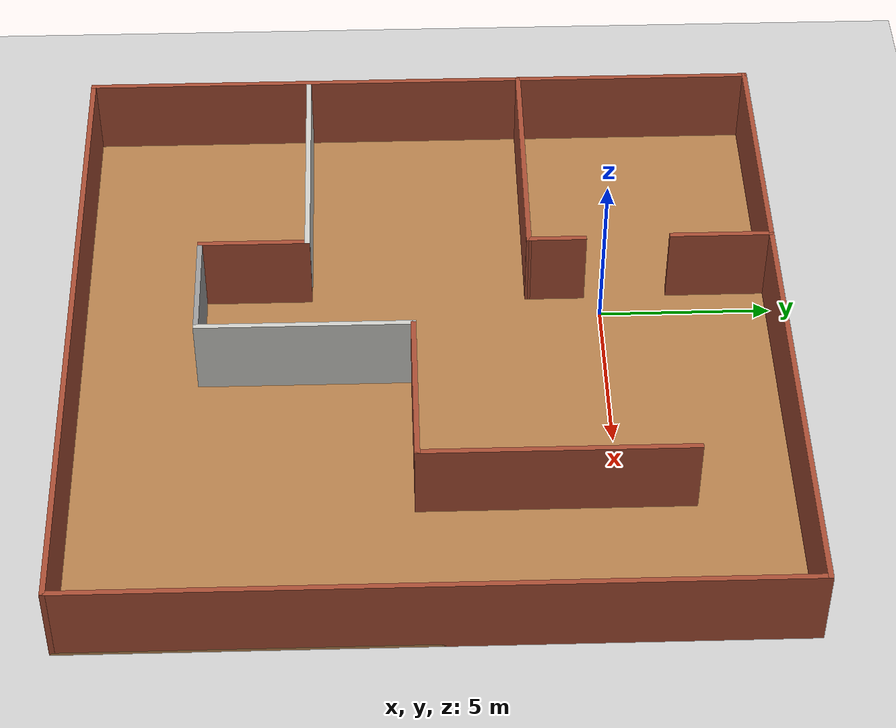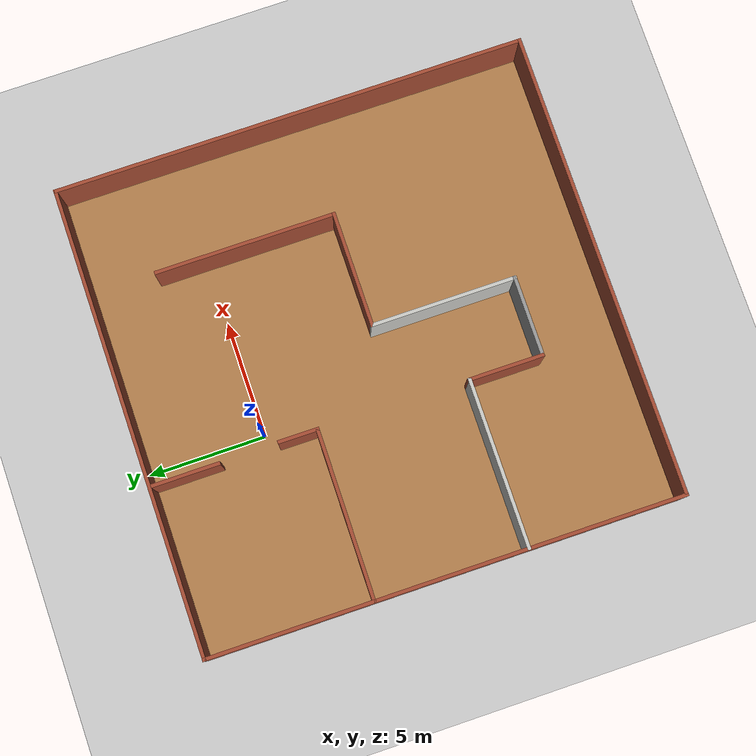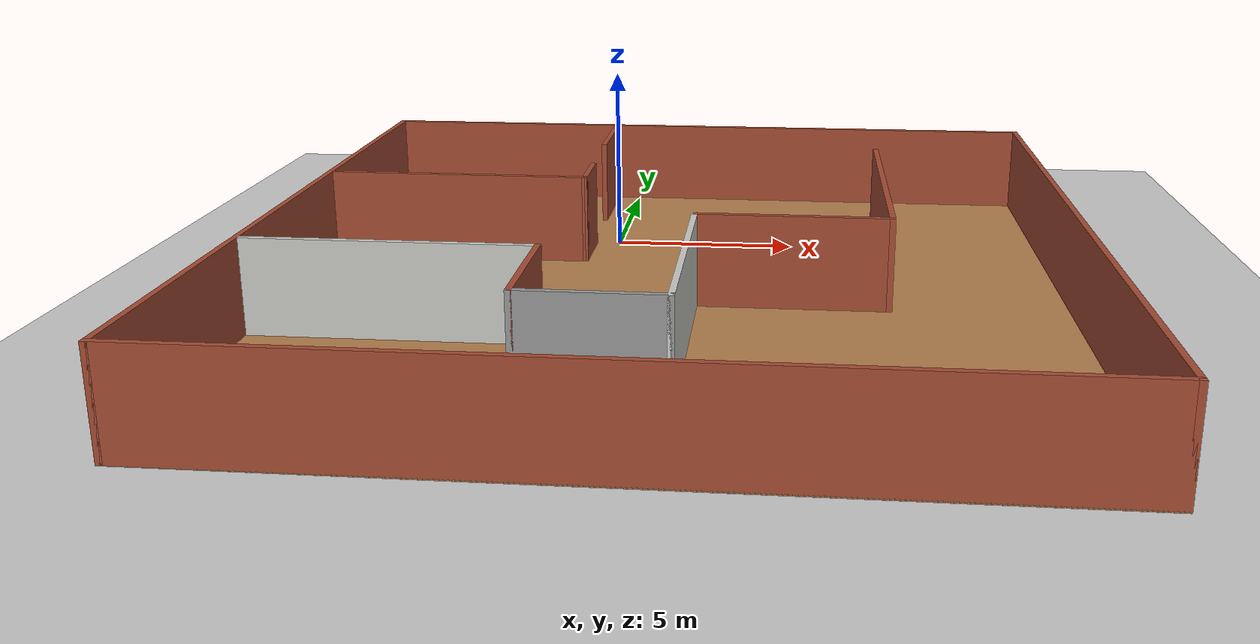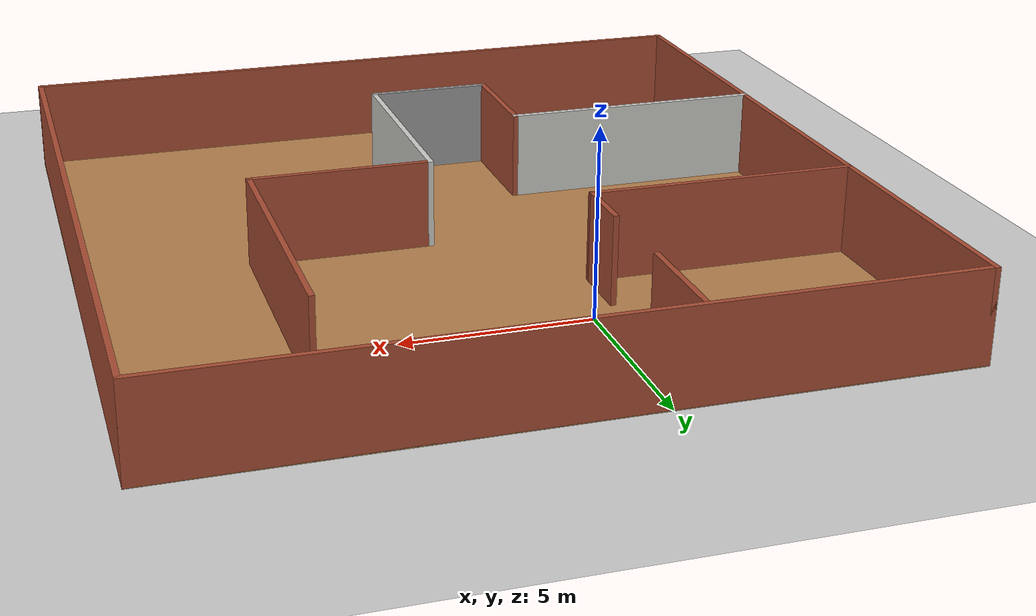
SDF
<sdf version="1.6">
 <world name="default">
  <scene><ambient>0.4 0.4 0.4 1</ambient><background>0.7 0.7 0.7 1</background><shadows>1</shadows></scene>
  <model name="ground_plane">
   <static>1</static>
   <link name="link">
    <collision name="collision">
     <geometry><plane><normal>0 0 1</normal><size>100 100</size></plane></geometry>
     <surface><friction><ode><mu>100</mu><mu2>50</mu2></ode></friction></surface>
    </collision>
    <visual name="visual">
     <cast_shadows>0</cast_shadows>
     <geometry><plane><normal>0 0 1</normal><size>100 100</size></plane></geometry>
     <material>
      <script><uri>file://media/materials/scripts/gazebo.material</uri><name>Gazebo/Grey</name></script>
     </material>
    </visual>
   </link>
  </model>
  <physics name="default_physics" default="0" type="ode">
   <real_time_update_rate>1000</real_time_update_rate>
   <max_step_size>0.001</max_step_size>
   <real_time_factor>1</real_time_factor>
   <ode>
    <solver>
     <type>quick</type>
     <iters>150</iters>
     <precon_iters>0</precon_iters>
     <sor>1.4</sor>
     <use_dynamic_moi_rescaling>1</use_dynamic_moi_rescaling>
    </solver>
    <constraints>
     <cfm>1e-05</cfm>
     <erp>0.2</erp>
     <contact_max_correcting_vel>2000</contact_max_correcting_vel>
     <contact_surface_layer>0.01</contact_surface_layer>
    </constraints>
   </ode>
  </physics>
  <gravity>0 0 -9.8</gravity>
  <magnetic_field>6e-06 2.3e-05 -4.2e-05</magnetic_field>
  <atmosphere type="adiabatic"/>
  <spherical_coordinates>
   <surface_model>EARTH_WGS84</surface_model>
   <latitude_deg>0</latitude_deg>
   <longitude_deg>0</longitude_deg>
   <elevation>0</elevation>
   <heading_deg>0</heading_deg>
  </spherical_coordinates>
  <model name="kepas_house">
   <pose>2.09316 -5.12041 0 0 -0 0</pose>
   <link name="Floor_2">
    <collision name="Floor_2_Collision">
     <geometry><box><size>20 20.25 0.1</size></box></geometry>
     <pose>0 0 0.05 0 -0 0</pose>
    </collision>
    <visual name="Floor_2_Visual">
     <pose>0 0 0.05 0 -0 0</pose>
     <geometry><box><size>20 20.25 0.1</size></box></geometry>
     <material>
      <script><uri>file://media/materials/scripts/gazebo.material</uri><name>Gazebo/Wood</name></script>
      <ambient>1 1 1 1</ambient>
     </material>
    </visual>
   </link>
   <link name="Wall_123">
    <collision name="Wall_123_Collision">
     <geometry><box><size>7.25 0.15 2.5</size></box></geometry>
     <pose>0 0 1.25 0 -0 0</pose>
    </collision>
    <visual name="Wall_123_Visual">
     <pose>0 0 1.25 0 -0 0</pose>
     <geometry><box><size>7.25 0.15 2.5</size></box></geometry>
     <material>
      <script><uri>file://media/materials/scripts/gazebo.material</uri><name>Gazebo/CeilingTiled</name></script>
      <ambient>1 1 1 1</ambient>
     </material>
    </visual>
    <pose>-6.36597 -3.42122 0 0 -0 0</pose>
   </link>
   <link name="Wall_124">
    <collision name="Wall_124_Collision">
     <geometry><box><size>3.25 0.15 2.5</size></box></geometry>
     <pose>0 0 1.25 0 -0 0</pose>
    </collision>
    <visual name="Wall_124_Visual">
     <pose>0 0 1.25 0 -0 0</pose>
     <geometry><box><size>3.25 0.15 2.5</size></box></geometry>
     <material>
      <script><uri>file://media/materials/scripts/gazebo.material</uri><name>Gazebo/Bricks</name></script>
      <ambient>1 1 1 1</ambient>
     </material>
    </visual>
    <pose>-2.81597 -4.97121 0 0 0 -1.5708</pose>
   </link>
   <link name="Wall_125">
    <collision name="Wall_125_Collision">
     <geometry><box><size>3.5 0.15 2.5</size></box></geometry>
     <pose>0 0 1.25 0 -0 0</pose>
    </collision>
    <visual name="Wall_125_Visual">
     <pose>0 0 1.25 0 -0 0</pose>
     <geometry><box><size>3.5 0.15 2.5</size></box></geometry>
     <material>
      <script><uri>file://media/materials/scripts/gazebo.material</uri><name>Gazebo/Grey</name></script>
      <ambient>1 1 1 1</ambient>
     </material>
    </visual>
    <pose>-1.14097 -6.52121 0 0 -0 0</pose>
   </link>
   <link name="Wall_126">
    <collision name="Wall_126_Collision">
     <geometry><box><size>6.25 0.15 2.5</size></box></geometry>
     <pose>0 0 1.25 0 -0 0</pose>
    </collision>
    <visual name="Wall_126_Visual">
     <pose>0 0 1.25 0 -0 0</pose>
     <geometry><box><size>6.25 0.15 2.5</size></box></geometry>
     <material>
      <script><uri>file://media/materials/scripts/gazebo.material</uri><name>Gazebo/CeilingTiled</name></script>
      <ambient>1 1 1 1</ambient>
     </material>
    </visual>
    <pose>0.53403 -3.47121 0 0 -0 1.5708</pose>
   </link>
   <link name="Wall_127">
    <collision name="Wall_127_Collision">
     <geometry><box><size>5 0.15 2.5</size></box></geometry>
     <pose>0 0 1.25 0 -0 0</pose>
    </collision>
    <visual name="Wall_127_Visual">
     <pose>0 0 1.25 0 -0 0</pose>
     <geometry><box><size>5 0.15 2.5</size></box></geometry>
     <material>
      <script><uri>file://media/materials/scripts/gazebo.material</uri><name>Gazebo/Bricks</name></script>
      <ambient>1 1 1 1</ambient>
     </material>
    </visual>
    <pose>2.95903 -0.421215 0 0 -0 0</pose>
   </link>
   <link name="Wall_128">
    <collision name="Wall_128_Collision">
     <geometry><box><size>7.75 0.15 2.5</size></box></geometry>
     <pose>0 0 1.25 0 -0 0</pose>
    </collision>
    <visual name="Wall_128_Visual">
     <pose>0 0 1.25 0 -0 0</pose>
     <geometry><box><size>7.75 0.15 2.5</size></box></geometry>
     <material>
      <script><uri>file://media/materials/scripts/gazebo.material</uri><name>Gazebo/Bricks</name></script>
      <ambient>1 1 1 1</ambient>
     </material>
    </visual>
    <pose>5.38403 3.37878 0 0 -0 1.5708</pose>
   </link>
   <link name="Wall_82">
    <collision name="Wall_82_Collision">
     <geometry><box><size>20 0.15 2.5</size></box></geometry>
     <pose>0 0 1.25 0 -0 0</pose>
    </collision>
    <visual name="Wall_82_Visual">
     <pose>0 0 1.25 0 -0 0</pose>
     <geometry><box><size>20 0.15 2.5</size></box></geometry>
     <material>
      <script><uri>file://media/materials/scripts/gazebo.material</uri><name>Gazebo/Bricks</name></script>
      <ambient>1 1 1 1</ambient>
     </material>
    </visual>
    <pose>0 -10.05 0 0 -0 0</pose>
   </link>
   <link name="Wall_83">
    <collision name="Wall_83_Collision">
     <geometry><box><size>20.25 0.15 2.5</size></box></geometry>
     <pose>0 0 1.25 0 -0 0</pose>
    </collision>
    <visual name="Wall_83_Visual">
     <pose>0 0 1.25 0 -0 0</pose>
     <geometry><box><size>20.25 0.15 2.5</size></box></geometry>
     <material>
      <script><uri>file://media/materials/scripts/gazebo.material</uri><name>Gazebo/Bricks</name></script>
      <ambient>1 1 1 1</ambient>
     </material>
    </visual>
    <pose>-9.925 0 0 0 -0 1.5708</pose>
   </link>
   <link name="Wall_84">
    <collision name="Wall_84_Collision">
     <geometry><box><size>20 0.15 2.5</size></box></geometry>
     <pose>0 0 1.25 0 -0 0</pose>
    </collision>
    <visual name="Wall_84_Visual">
     <pose>0 0 1.25 0 -0 0</pose>
     <geometry><box><size>20 0.15 2.5</size></box></geometry>
     <material>
      <script><uri>file://media/materials/scripts/gazebo.material</uri><name>Gazebo/Bricks</name></script>
      <ambient>1 1 1 1</ambient>
     </material>
    </visual>
    <pose>0 10.05 0 0 -0 0</pose>
   </link>
   <link name="Wall_85">
    <collision name="Wall_85_Collision">
     <geometry><box><size>20.25 0.15 2.5</size></box></geometry>
     <pose>0 0 1.25 0 -0 0</pose>
    </collision>
    <visual name="Wall_85_Visual">
     <pose>0 0 1.25 0 -0 0</pose>
     <geometry><box><size>20.25 0.15 2.5</size></box></geometry>
     <material>
      <script><uri>file://media/materials/scripts/gazebo.material</uri><name>Gazebo/Bricks</name></script>
      <ambient>1 1 1 1</ambient>
     </material>
    </visual>
    <pose>9.925 0 0 0 0 -1.5708</pose>
   </link>
   <link name="Wall_86">
    <collision name="Wall_86_Collision">
     <geometry><box><size>7.28527 0.15 2.5</size></box></geometry>
     <pose>0 0 1.25 0 -0 0</pose>
    </collision>
    <visual name="Wall_86_Visual">
     <pose>0 0 1.25 0 -0 0</pose>
     <geometry><box><size>7.28527 0.15 2.5</size></box></geometry>
     <material>
      <script><uri>file://media/materials/scripts/gazebo.material</uri><name>Gazebo/Bricks</name></script>
      <ambient>1 1 1 1</ambient>
     </material>
    </visual>
    <pose>-6.32407 3.01449 0 0 0 -0.00493</pose>
   </link>
   <link name="Wall_87">
    <collision name="Wall_87_Collision">
     <geometry><box><size>1.75 0.15 2.5</size></box></geometry>
     <pose>0 0 1.25 0 -0 0</pose>
    </collision>
    <visual name="Wall_87_Visual">
     <pose>0 0 1.25 0 -0 0</pose>
     <geometry><box><size>1.75 0.15 2.5</size></box></geometry>
     <material>
      <script><uri>file://media/materials/scripts/gazebo.material</uri><name>Gazebo/Bricks</name></script>
      <ambient>1 1 1 1</ambient>
     </material>
    </visual>
    <pose>-2.75649 3.7969 0 0 -0 1.5708</pose>
   </link>
   <link name="Wall_88">
    <collision name="Wall_88_Collision">
     <geometry><box><size>3 0.15 2.5</size></box></geometry>
     <pose>0 0 1.25 0 -0 0</pose>
    </collision>
    <visual name="Wall_88_Visual">
     <pose>0 0 1.25 0 -0 0</pose>
     <geometry><box><size>3 0.15 2.5</size></box></geometry>
     <material>
      <script><uri>file://media/materials/scripts/gazebo.material</uri><name>Gazebo/Bricks</name></script>
      <ambient>1 1 1 1</ambient>
     </material>
    </visual>
    <pose>-2.80525 8.58708 0 0 0 -1.5708</pose>
   </link>
   <static>1</static>
  </model>
 </world>
</sdf>
